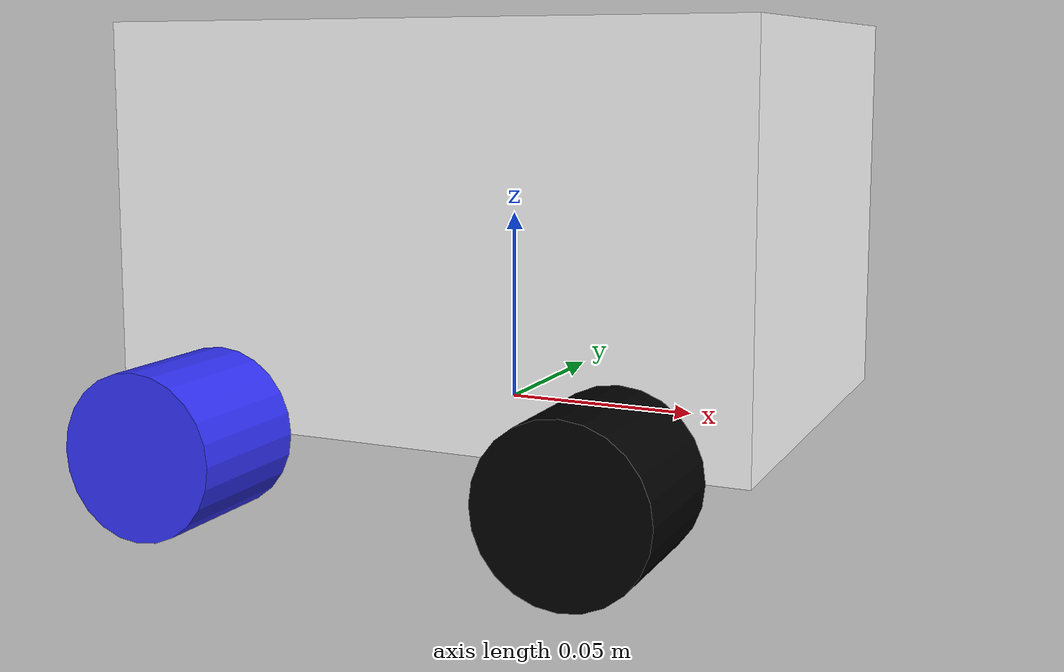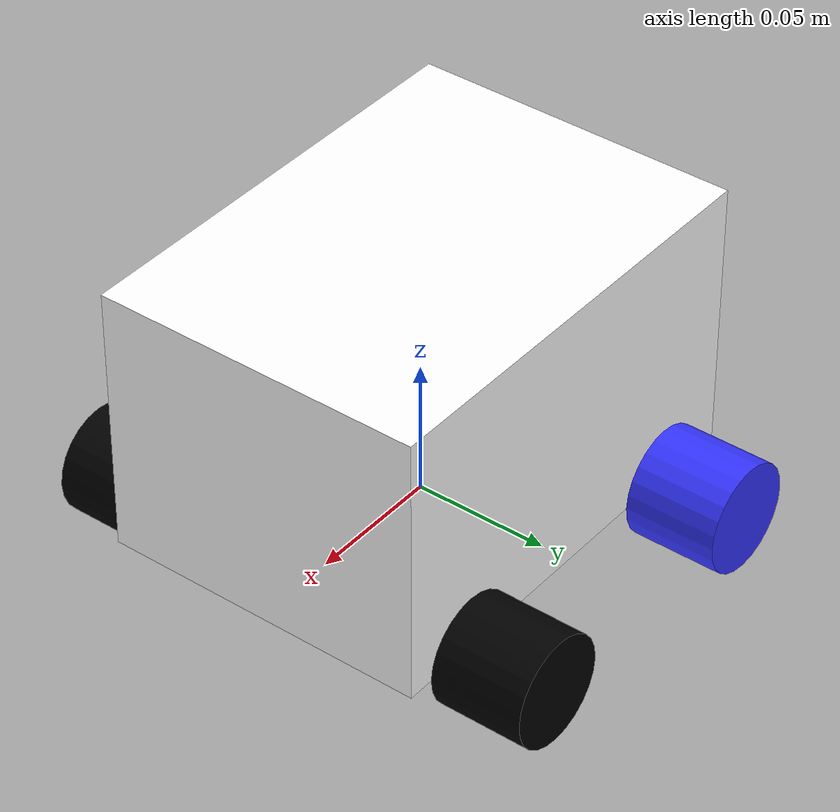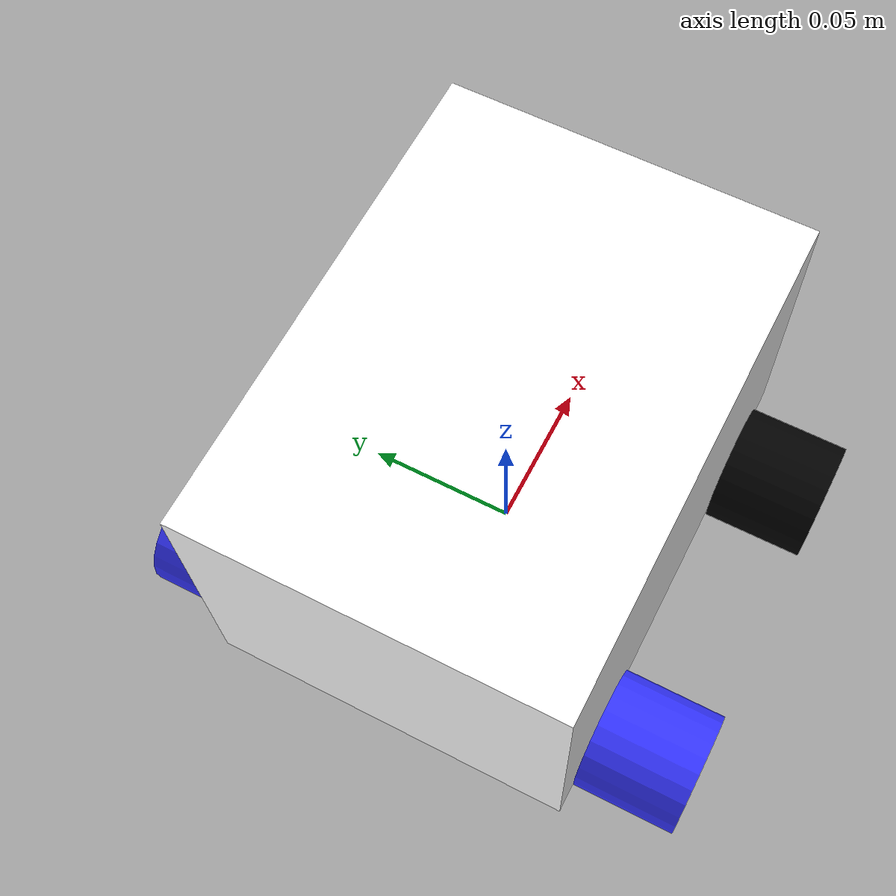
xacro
<?xml version="1.0"?>
<robot xmlns:xacro="http://www.ros.org/wiki/xacro" >

    <xacro:include filename="inertial_macros.xacro"/>

    <material name="white">
        <color rgba= "1 1 1 1" />
    </material>

    <material name="orange">
        <color rgba= "1 0.3 0.1 1" />
    </material>

    <material name="blue">
        <color rgba= "0.2 0.2 1 1" />
    </material>

    <material name="black">
        <color rgba= "0 0 0 1" />
    </material>

    <link name= "base_link">

    </link>
    <!--CHASSIS LINK-->
    <joint name="chasis_joint" type="fixed">
        <parent link="base_link"/>
        <child  link= "chassis"/>
        <origin xyz="-0.0825 0 0"/>
    </joint>

    <link name= "chassis">
        <visual>
            <origin xyz="0.0825 0 0.05"/>
            <geometry>
                <box size= "0.165 0.121 0.1" />
            </geometry>
            <material name= "white"/>
        </visual>

        <collision>
            <origin xyz="0.0825 0 0.05"/>
            <geometry>
                <box size= "0.165 0.121 0.1" />
            </geometry>]]]]]]]]]]]]]]]
        </collision>

        <xacro:inertial_box mass="0.5" x="0.165" y="0.121" z="0.1">
            <origin xyz="0.0825 0 0.05" rpy="0 0 0"/>
        </xacro:inertial_box>
    </link>

    <gazebo reference="chasis">
        <material>Gazebo/White</material>
    </gazebo>

    <!--RUEDA IZQUIERDA TRASERA LINK-->
    <joint name="left_wheel_joint" type="continuous">
        <parent link= "base_link"/>
        <child  link= "left_wheel"/>
        <origin xyz=" -0.0525 0.0775 0" rpy="-${pi/2} 0 0"/>
        <axis xyz="0 0 1"/>
    </joint>

    <link name= "left_wheel">
        <visual>
            <geometry>
                <cylinder radius="0.02" length="0.034" />
            </geometry>
            <material name= "blue"/>
        </visual>

        <collision>
            <geometry>
                <cylinder radius="0.02" length="0.034" />
            </geometry>
        </collision>
        <xacro:inertial_cylinder mass="0.1" length="0.034" radius="0.02">
            <origin xyz="0 0 0" rpy="0 0 0"/>
        </xacro:inertial_cylinder>
    </link>

    <gazebo reference="left_wheel">
        <material>Gazebo/Blue</material>
    </gazebo>

    <!--RUEDA DERECHA LINK-->
    <joint name="right_wheel_joint" type="continuous">
        <parent link= "base_link"/>
        <child  link= "right_wheel"/>
        <origin xyz=" -0.0525 -0.0775 0" rpy="${pi/2} 0 0"/>
        <axis xyz="0 0 -1"/>
    </joint>

    <link name= "right_wheel">
        <visual>
            <geometry>
                <cylinder radius="0.02" length="0.034" />
            </geometry>
            <material name= "blue"/>
        </visual>

        <collision>
            <geometry>
                <cylinder radius="0.02" length="0.034" />
            </geometry>
        </collision>
        <xacro:inertial_cylinder mass="0.1" length="0.034" radius="0.02">
            <origin xyz="0 0 0" rpy="0 0 0"/>
        </xacro:inertial_cylinder>
    </link>

    <gazebo reference="right_wheel">
        <material>Gazebo/Blue</material>
    </gazebo>

    <!--RUEDA IZQUIERDA DELANTERA LINK-->
    <joint name="left_wheel_forward_joint" type="fixed">
        <parent link= "chassis"/>
        <child  link= "left_wheel_forward"/>
        <origin xyz=" 0.135 0.0775 0" rpy="-${pi/2} 0 0"/>
        <axis xyz="0 0 1"/>
    </joint>

    <link name= "left_wheel_forward">
        <visual>
            <geometry>
                <cylinder radius="0.02" length="0.034" />
            </geometry>
            <material name= "black"/>
        </visual>

        <collision>
            <geometry>
                <cylinder radius="0.02" length="0.034" />
            </geometry>
        </collision>
        <xacro:inertial_cylinder mass="0.1" length="0.034" radius="0.02">
            <origin xyz="0 0 0" rpy="0 0 0"/>
        </xacro:inertial_cylinder>

    </link>

    <gazebo reference="left_wheel_forward">
        <material>Gazebo/Black</material>
        <mu1 value="0.001"/>
        <mu2 value="0.001"/>
    </gazebo>

    <!--RUEDA DERECHA DELANTERA LINK-->
    <joint name="right_wheel_forward_joint" type="fixed">
        <parent link= "chassis"/>
        <child  link= "right_wheel_forward"/>
        <origin xyz=" 0.135 -0.0775 0" rpy="${pi/2} 0 0"/>
        <axis xyz="0 0 -1"/>
    </joint>

    <link name= "right_wheel_forward">
        <visual>
            <geometry>
                <cylinder radius="0.02" length="0.034" />
            </geometry>
            <material name= "black"/>
        </visual>

        <collision>
            <geometry>
                <cylinder radius="0.02" length="0.034" />
            </geometry>
        </collision>
        <xacro:inertial_cylinder mass="0.1" length="0.034" radius="0.02">
            <origin xyz="0 0 0" rpy="0 0 0"/>
        </xacro:inertial_cylinder>

    </link>

    <gazebo reference="right_wheel_forward">
        <material>Gazebo/Black</material>
        <mu1 value="0.001"/>
        <mu2 value="0.001"/>
    </gazebo>

</robot>
